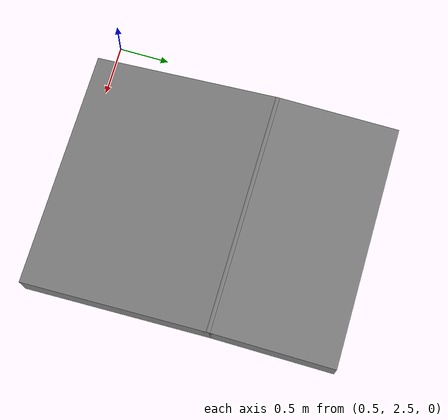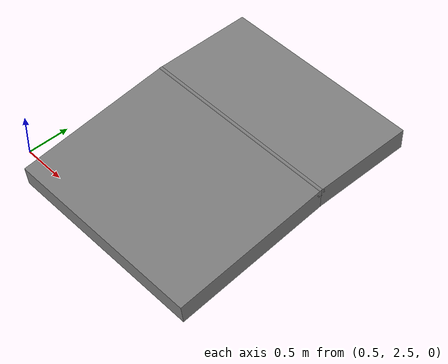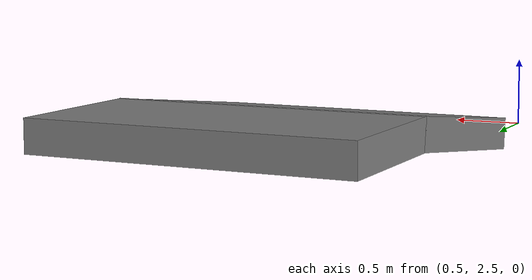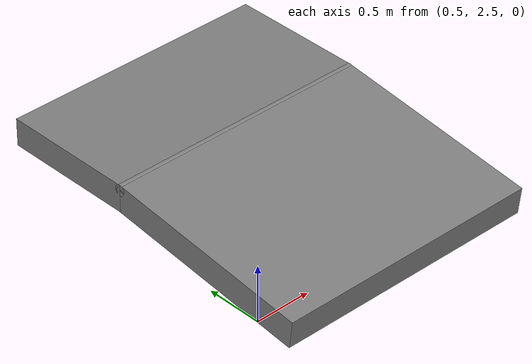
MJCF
<mujoco model="ramp">
<!-- Copyright (c) 2025 Boston Dynamics AI Institute LLC. All rights reserved. -->
    <worldbody>
        <body name="ramp" pos="3.090 5.412 0" quat="0 0 0 1">
            <geom name="ramp_box1" type="box" size="1.215 0.61 0.125" pos="1.215 0.61 0.125" friction="0.6" priority="5"/>
            <geom name="ramp_box2" type="box" size="1.215 0.95 0.125" pos="1.215 2.14685948 0.00698456" quat="0.998 -0.0628 0 0" friction="0.6" priority="5"/>
            <geom name="ramp_cyl3" type="cylinder" size="0.05" fromto="0 1.22 0.203 2.43 1.22 0.203" friction="0.6" priority="5"/>
        </body>
    </worldbody>
</mujoco>
